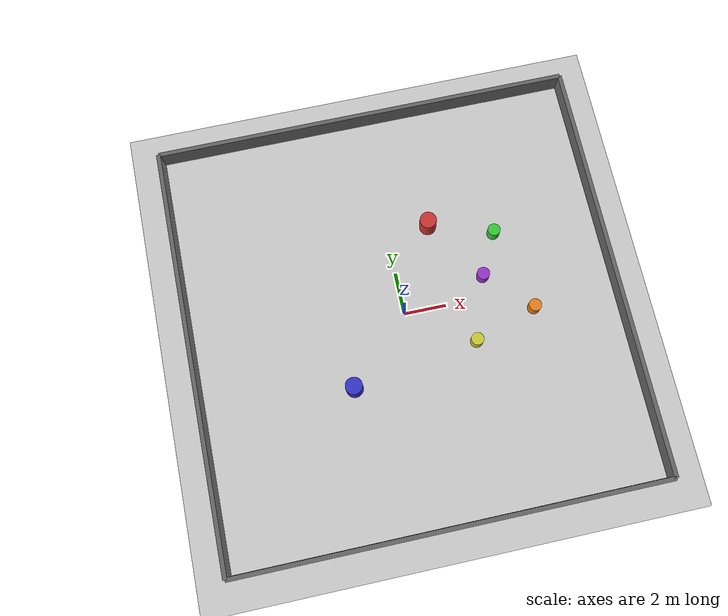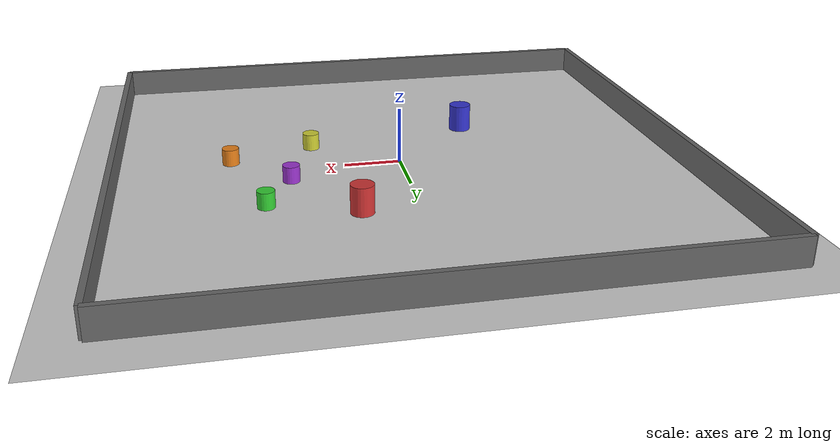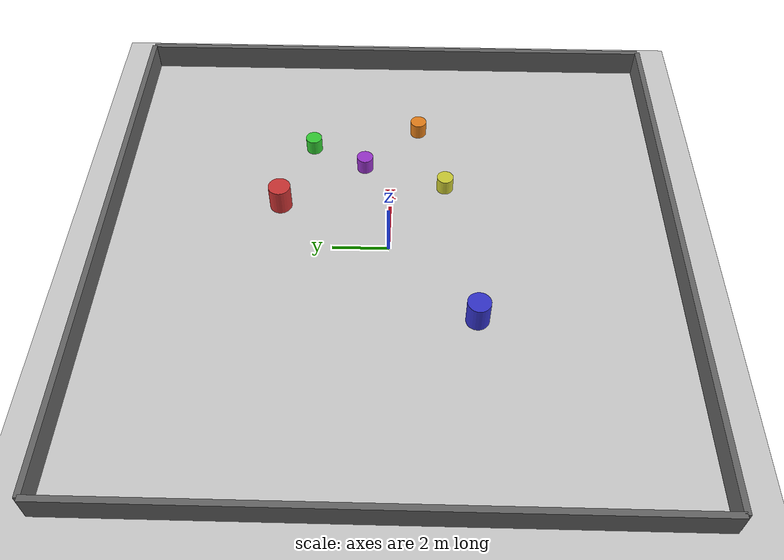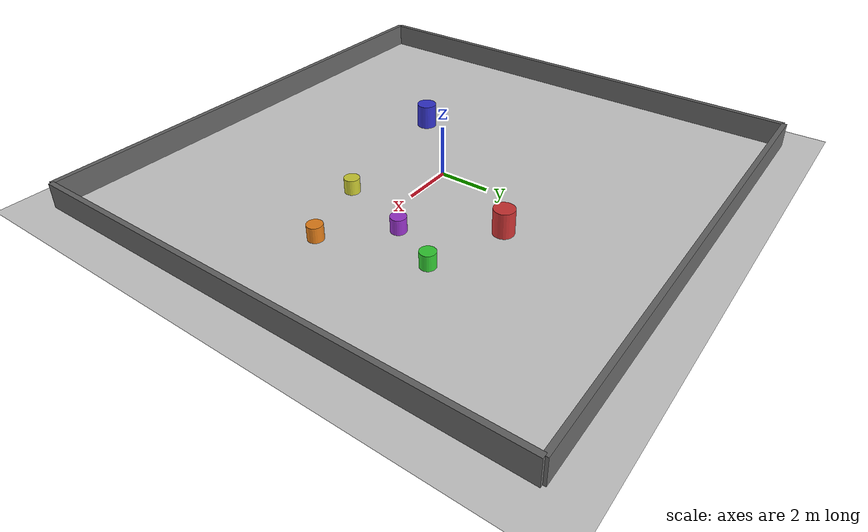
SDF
<?xml version="1.0" ?>
<sdf version="1.8">
  <world name="dynamic_obstacles_world">
    <!-- Physics settings -->
    <physics name="4ms" type="ignored">
      <max_step_size>0.004</max_step_size>
      <real_time_factor>1.0</real_time_factor>
      <real_time_update_rate>250</real_time_update_rate>
    </physics>

    <plugin
      filename="gz-sim-physics-system"
      name="gz::sim::systems::Physics">
    </plugin>
    <plugin
      filename="gz-sim-user-commands-system"
      name="gz::sim::systems::UserCommands">
    </plugin>
    <plugin
      filename="gz-sim-scene-broadcaster-system"
      name="gz::sim::systems::SceneBroadcaster">
    </plugin>
    <plugin
      filename="gz-sim-sensors-system"
      name="gz::sim::systems::Sensors">
    </plugin>

    <!-- Sun light -->
    <light type="directional" name="sun">
      <cast_shadows>true</cast_shadows>
      <pose>0 0 10 0 0 0</pose>
      <diffuse>0.8 0.8 0.8 1</diffuse>
      <specular>0.2 0.2 0.2 1</specular>
      <attenuation>
        <range>1000</range>
        <constant>0.9</constant>
        <linear>0.01</linear>
        <quadratic>0.001</quadratic>
      </attenuation>
      <direction>-0.5 0.1 -0.9</direction>
    </light>

    <!-- Ground plane -->
    <model name="ground_plane">
      <static>true</static>
      <link name="link">
        <collision name="collision">
          <geometry>
            <plane>
              <normal>0 0 1</normal>
              <size>100 100</size>
            </plane>
          </geometry>
        </collision>
        <visual name="visual">
          <geometry>
            <plane>
              <normal>0 0 1</normal>
              <size>100 100</size>
            </plane>
          </geometry>
          <material>
            <ambient>0.8 0.8 0.8 1</ambient>
            <diffuse>0.8 0.8 0.8 1</diffuse>
            <specular>0.8 0.8 0.8 1</specular>
          </material>
        </visual>
      </link>
    </model>

    <!-- 경계 벽 (20m × 20m 아레나, 높이 1m)          -->

    <model name="wall_px">
      <static>true</static>
      <pose>10 0 0.5 0 0 0</pose>
      <link name="link">
        <collision name="collision">
          <geometry><box><size>0.2 20.0 1.0</size></box></geometry>
        </collision>
        <visual name="visual">
          <geometry><box><size>0.2 20.0 1.0</size></box></geometry>
          <material>
            <ambient>0.4 0.4 0.4 1.0</ambient>
            <diffuse>0.4 0.4 0.4 1.0</diffuse>
          </material>
        </visual>
      </link>
    </model>

    <model name="wall_mx">
      <static>true</static>
      <pose>-10 0 0.5 0 0 0</pose>
      <link name="link">
        <collision name="collision">
          <geometry><box><size>0.2 20.0 1.0</size></box></geometry>
        </collision>
        <visual name="visual">
          <geometry><box><size>0.2 20.0 1.0</size></box></geometry>
          <material>
            <ambient>0.4 0.4 0.4 1.0</ambient>
            <diffuse>0.4 0.4 0.4 1.0</diffuse>
          </material>
        </visual>
      </link>
    </model>

    <model name="wall_py">
      <static>true</static>
      <pose>0 10 0.5 0 0 0</pose>
      <link name="link">
        <collision name="collision">
          <geometry><box><size>20.0 0.2 1.0</size></box></geometry>
        </collision>
        <visual name="visual">
          <geometry><box><size>20.0 0.2 1.0</size></box></geometry>
          <material>
            <ambient>0.4 0.4 0.4 1.0</ambient>
            <diffuse>0.4 0.4 0.4 1.0</diffuse>
          </material>
        </visual>
      </link>
    </model>

    <model name="wall_my">
      <static>true</static>
      <pose>0 -10 0.5 0 0 0</pose>
      <link name="link">
        <collision name="collision">
          <geometry><box><size>20.0 0.2 1.0</size></box></geometry>
        </collision>
        <visual name="visual">
          <geometry><box><size>20.0 0.2 1.0</size></box></geometry>
          <material>
            <ambient>0.4 0.4 0.4 1.0</ambient>
            <diffuse>0.4 0.4 0.4 1.0</diffuse>
          </material>
        </visual>
      </link>
    </model>

    <!-- 정적 장애물 (2개, lidar 감지 보장)            -->

    <!-- 정적 1: (2, 4) — 빨강 박스 -->
    <model name="static_obstacle_1">
      <static>true</static>
      <pose>2 4 0.5 0 0 0</pose>
      <link name="link">
        <collision name="collision">
          <geometry><cylinder><radius>0.4</radius><length>1.0</length></cylinder></geometry>
        </collision>
        <visual name="visual">
          <geometry><cylinder><radius>0.4</radius><length>1.0</length></cylinder></geometry>
          <material>
            <ambient>0.8 0.2 0.2 1.0</ambient>
            <diffuse>0.8 0.2 0.2 1.0</diffuse>
          </material>
        </visual>
      </link>
    </model>

    <!-- 정적 2: (-3, -3) — 파랑 박스 -->
    <model name="static_obstacle_2">
      <static>true</static>
      <pose>-3 -3 0.5 0 0 0</pose>
      <link name="link">
        <collision name="collision">
          <geometry><cylinder><radius>0.4</radius><length>1.0</length></cylinder></geometry>
        </collision>
        <visual name="visual">
          <geometry><cylinder><radius>0.4</radius><length>1.0</length></cylinder></geometry>
          <material>
            <ambient>0.2 0.2 0.8 1.0</ambient>
            <diffuse>0.2 0.2 0.8 1.0</diffuse>
          </material>
        </visual>
      </link>
    </model>

    <!-- 동적 장애물 (4개, VelocityControl 플러그인)    -->
    <!-- stress_test.py의 DynamicObstacleController가  -->
    <!-- gz 토픽으로 cmd_vel 왕복 속도를 publish        -->

    <!-- 동적 1: slow (5,3) — Y방향 0.3m/s 왕복, 초록 -->
    <model name="dynamic_obstacle_slow">
      <pose>5 3 0.3 0 0 0</pose>
      <link name="link">
        <inertial>
          <mass>100.0</mass>
          <inertia>
            <ixx>2.25</ixx><iyy>2.25</iyy><izz>4.5</izz>
            <ixy>0</ixy><ixz>0</ixz><iyz>0</iyz>
          </inertia>
        </inertial>
        <collision name="collision">
          <geometry><cylinder><radius>0.3</radius><length>0.6</length></cylinder></geometry>
        </collision>
        <visual name="visual">
          <geometry><cylinder><radius>0.3</radius><length>0.6</length></cylinder></geometry>
          <material>
            <ambient>0.2 0.8 0.2 1.0</ambient>
            <diffuse>0.2 0.8 0.2 1.0</diffuse>
          </material>
        </visual>
      </link>
      <plugin filename="gz-sim-velocity-control-system"
              name="gz::sim::systems::VelocityControl"/>
    </model>

    <!-- 동적 2: medium (3,-2) — X방향 0.6m/s 왕복, 노랑 -->
    <model name="dynamic_obstacle_medium">
      <pose>3 -2 0.3 0 0 0</pose>
      <link name="link">
        <inertial>
          <mass>100.0</mass>
          <inertia>
            <ixx>2.25</ixx><iyy>2.25</iyy><izz>4.5</izz>
            <ixy>0</ixy><ixz>0</ixz><iyz>0</iyz>
          </inertia>
        </inertial>
        <collision name="collision">
          <geometry><cylinder><radius>0.3</radius><length>0.6</length></cylinder></geometry>
        </collision>
        <visual name="visual">
          <geometry><cylinder><radius>0.3</radius><length>0.6</length></cylinder></geometry>
          <material>
            <ambient>0.8 0.8 0.2 1.0</ambient>
            <diffuse>0.8 0.8 0.2 1.0</diffuse>
          </material>
        </visual>
      </link>
      <plugin filename="gz-sim-velocity-control-system"
              name="gz::sim::systems::VelocityControl"/>
    </model>

    <!-- 동적 3: fast (6,-1) — Y방향 1.0m/s 왕복, 오렌지 -->
    <model name="dynamic_obstacle_fast">
      <pose>6 -1 0.3 0 0 0</pose>
      <link name="link">
        <inertial>
          <mass>100.0</mass>
          <inertia>
            <ixx>2.25</ixx><iyy>2.25</iyy><izz>4.5</izz>
            <ixy>0</ixy><ixz>0</ixz><iyz>0</iyz>
          </inertia>
        </inertial>
        <collision name="collision">
          <geometry><cylinder><radius>0.3</radius><length>0.6</length></cylinder></geometry>
        </collision>
        <visual name="visual">
          <geometry><cylinder><radius>0.3</radius><length>0.6</length></cylinder></geometry>
          <material>
            <ambient>0.9 0.5 0.1 1.0</ambient>
            <diffuse>0.9 0.5 0.1 1.0</diffuse>
          </material>
        </visual>
      </link>
      <plugin filename="gz-sim-velocity-control-system"
              name="gz::sim::systems::VelocityControl"/>
    </model>

    <!-- 동적 4: cross (4,1) — X방향 0.8m/s 왕복, 보라 -->
    <model name="dynamic_obstacle_cross">
      <pose>4 1 0.3 0 0 0</pose>
      <link name="link">
        <inertial>
          <mass>100.0</mass>
          <inertia>
            <ixx>2.25</ixx><iyy>2.25</iyy><izz>4.5</izz>
            <ixy>0</ixy><ixz>0</ixz><iyz>0</iyz>
          </inertia>
        </inertial>
        <collision name="collision">
          <geometry><cylinder><radius>0.3</radius><length>0.6</length></cylinder></geometry>
        </collision>
        <visual name="visual">
          <geometry><cylinder><radius>0.3</radius><length>0.6</length></cylinder></geometry>
          <material>
            <ambient>0.6 0.2 0.8 1.0</ambient>
            <diffuse>0.6 0.2 0.8 1.0</diffuse>
          </material>
        </visual>
      </link>
      <plugin filename="gz-sim-velocity-control-system"
              name="gz::sim::systems::VelocityControl"/>
    </model>

  </world>
</sdf>
